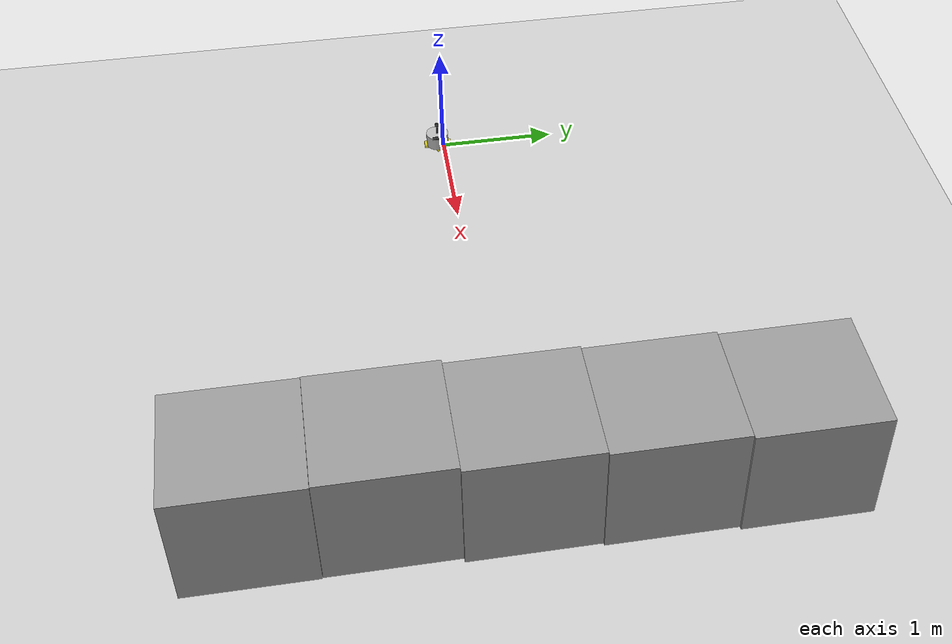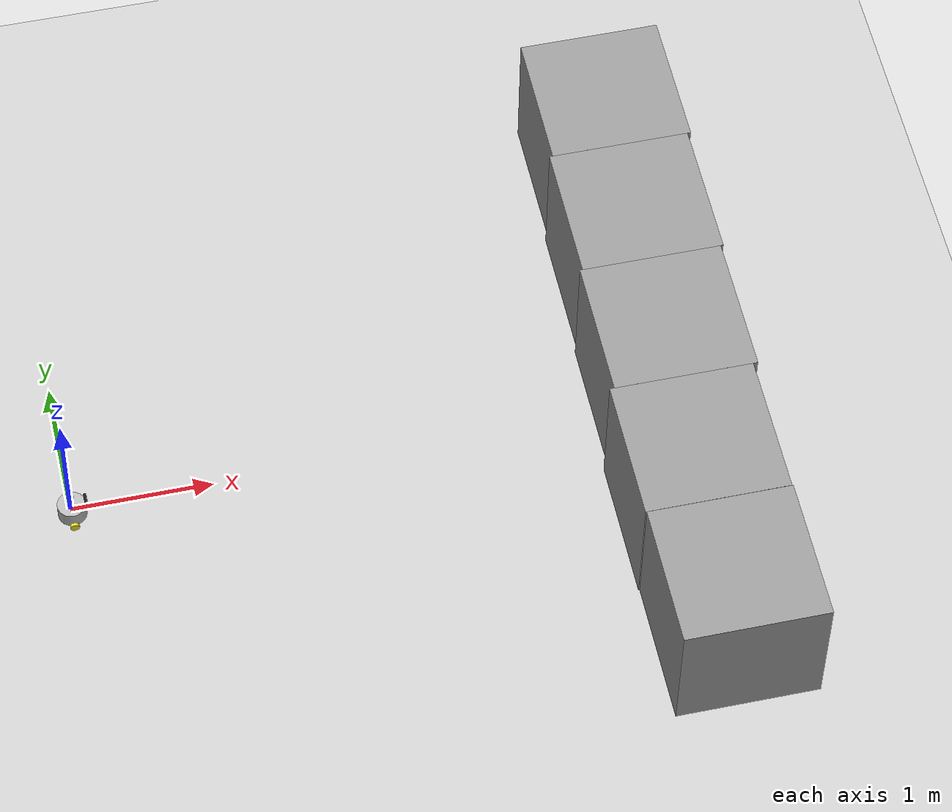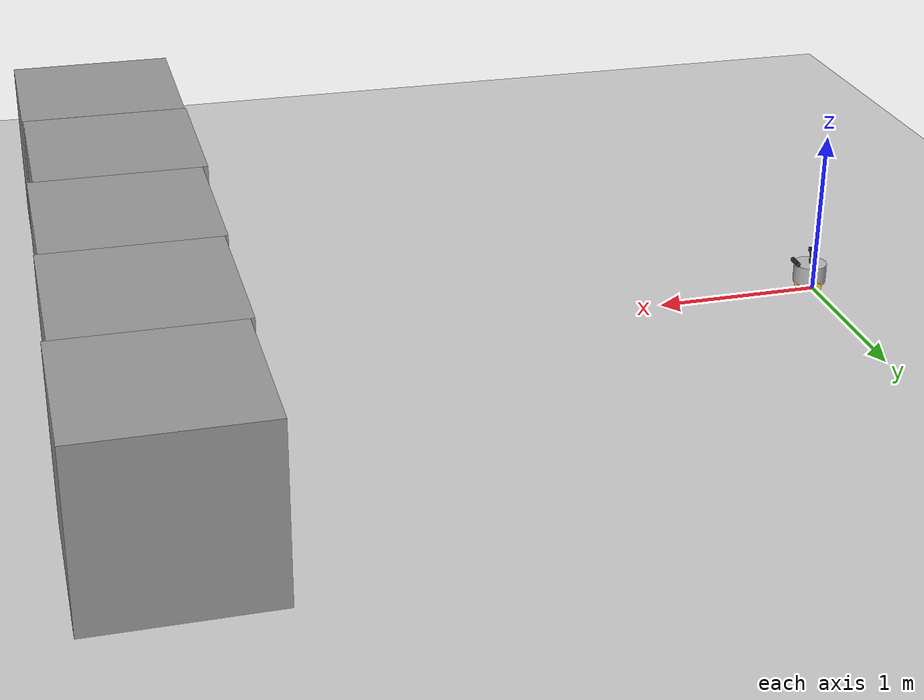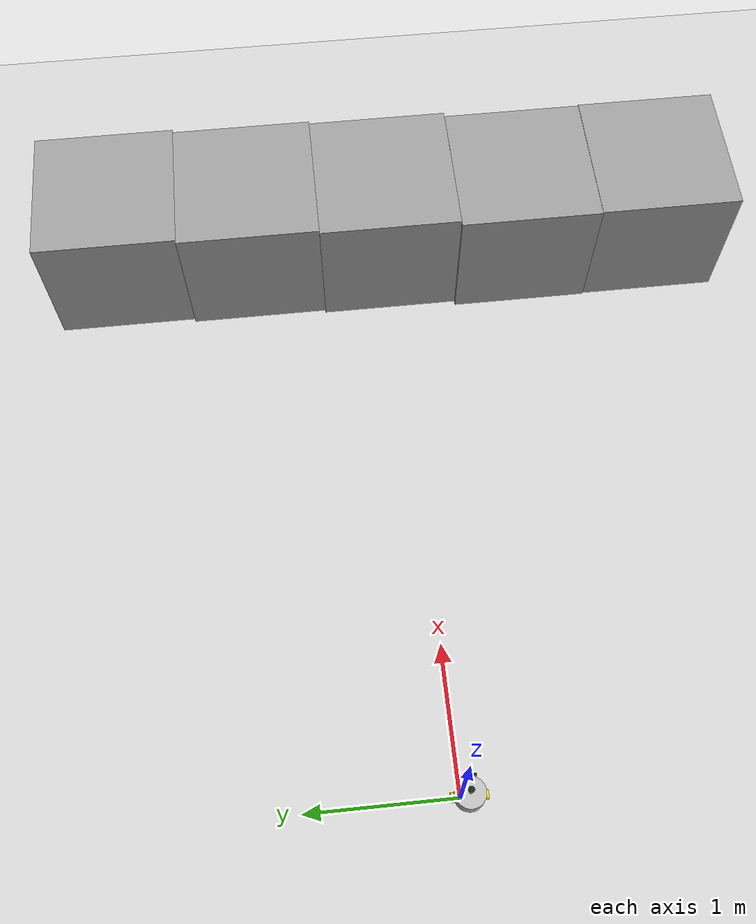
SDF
<sdf version="1.7">
 <world name="default">
  <light name="sun" type="directional">
   <pose>0 0 10 0 -0 0</pose>
   <diffuse>0.8 0.8 0.8 1</diffuse>
   <specular>0.2 0.2 0.2 1</specular>
   <attenuation>
    <range>1000</range>
    <constant>0.9</constant>
    <linear>0.01</linear>
    <quadratic>0.001</quadratic>
   </attenuation>
   <direction>-0.5 0.1 -0.9</direction>
   <spot><inner_angle>0</inner_angle><outer_angle>0</outer_angle><falloff>0</falloff></spot>
  </light>
  <model name="ground_plane">
   <static>1</static>
   <link name="link">
    <collision name="collision">
     <geometry><plane><normal>0 0 1</normal><size>100 100</size></plane></geometry>
     <surface>
      <contact><collide_bitmask>65535</collide_bitmask></contact>
      <friction><ode><mu>100</mu><mu2>50</mu2></ode></friction>
     </surface>
    </collision>
    <visual name="visual">
     <cast_shadows>0</cast_shadows>
     <geometry><plane><normal>0 0 1</normal><size>100 100</size></plane></geometry>
     <material>
      <script><uri>file://media/materials/scripts/gazebo.material</uri><name>Gazebo/Grey</name></script>
     </material>
    </visual>
   </link>
  </model>
  <gravity>0 0 -9.8</gravity>
  <magnetic_field>6e-06 2.3e-05 -4.2e-05</magnetic_field>
  <atmosphere type="adiabatic"/>
  <physics type="ode">
   <max_step_size>0.001</max_step_size>
   <real_time_factor>1</real_time_factor>
   <real_time_update_rate>1000</real_time_update_rate>
  </physics>
  <scene><ambient>0.4 0.4 0.4 1</ambient><background>0.7 0.7 0.7 1</background><shadows>1</shadows></scene>
  <audio><device>default</device></audio>
  <spherical_coordinates>
   <surface_model>EARTH_WGS84</surface_model>
   <latitude_deg>0</latitude_deg>
   <longitude_deg>0</longitude_deg>
   <elevation>0</elevation>
   <heading_deg>0</heading_deg>
  </spherical_coordinates>
  <model name="robot">
   <link name="base_footprint">
    <inertial>
     <pose>0.006849 0 0.097849 0 -0 0</pose>
     <mass>1.46</mass>
     <inertia>
      <ixx>0.00767852</ixx>
      <ixy>0</ixy>
      <ixz>-0.000681507</ixz>
      <iyy>0.00981003</iyy>
      <iyz>0</iyz>
      <izz>0.00733432</izz>
     </inertia>
    </inertial>
    <collision name="base_footprint_fixed_joint_lump__base_link_collision">
     <pose>0 0 0.091 0 -0 0</pose>
     <geometry><cylinder><length>0.12</length><radius>0.1</radius></cylinder></geometry>
    </collision>
    <collision name="base_footprint_fixed_joint_lump__back_caster_link_collision_1">
     <pose>0.08 0 0.015 0 -0 0</pose>
     <geometry><sphere><radius>0.016</radius></sphere></geometry>
     <surface>
      <contact><ode><kp>1e+10</kp><kd>1</kd></ode></contact>
      <friction><ode><mu>0</mu><mu2>0</mu2></ode></friction>
     </surface>
    </collision>
    <collision name="base_footprint_fixed_joint_lump__camera_link_collision_2">
     <pose>0.1 0 0.166 0 -0 0</pose>
     <geometry><box><size>0.02 0.1 0.02</size></box></geometry>
    </collision>
    <collision name="base_footprint_fixed_joint_lump__front_caster_link_collision_3">
     <pose>-0.08 0 0.015 0 -0 0</pose>
     <geometry><sphere><radius>0.016</radius></sphere></geometry>
     <surface>
      <contact><ode><kp>1e+10</kp><kd>1</kd></ode></contact>
      <friction><ode><mu>0</mu><mu2>0</mu2></ode></friction>
     </surface>
    </collision>
    <collision name="base_footprint_fixed_joint_lump__imu_link_collision_4">
     <pose>0 0 0.111 0 -0 0</pose>
     <geometry><box><size>0.02 0.02 0.02</size></box></geometry>
    </collision>
    <collision name="base_footprint_fixed_joint_lump__laser_support_link_collision_5">
     <pose>0 0 0.191 0 -0 0</pose>
     <geometry><cylinder><length>0.1</length><radius>0.01</radius></cylinder></geometry>
    </collision>
    <collision name="base_footprint_fixed_joint_lump__laser_link_collision_6">
     <pose>0 0 0.241 0 -0 0</pose>
     <geometry><cylinder><length>0.02</length><radius>0.02</radius></cylinder></geometry>
    </collision>
    <visual name="base_footprint_fixed_joint_lump__base_link_visual">
     <pose>0 0 0.091 0 -0 0</pose>
     <geometry><cylinder><length>0.12</length><radius>0.1</radius></cylinder></geometry>
    </visual>
    <visual name="base_footprint_fixed_joint_lump__back_caster_link_visual_1">
     <pose>0.08 0 0.015 0 -0 0</pose>
     <geometry><sphere><radius>0.016</radius></sphere></geometry>
     <material>
      <script><name>Gazebo/Yellow</name><uri>file://media/materials/scripts/gazebo.material</uri></script>
     </material>
    </visual>
    <visual name="base_footprint_fixed_joint_lump__camera_link_visual_2">
     <pose>0.1 0 0.166 0 -0 0</pose>
     <geometry><box><size>0.02 0.1 0.02</size></box></geometry>
     <material>
      <script><name>Gazebo/Black</name><uri>file://media/materials/scripts/gazebo.material</uri></script>
     </material>
    </visual>
    <visual name="base_footprint_fixed_joint_lump__front_caster_link_visual_3">
     <pose>-0.08 0 0.015 0 -0 0</pose>
     <geometry><sphere><radius>0.016</radius></sphere></geometry>
     <material>
      <script><name>Gazebo/Yellow</name><uri>file://media/materials/scripts/gazebo.material</uri></script>
     </material>
    </visual>
    <visual name="base_footprint_fixed_joint_lump__imu_link_visual_4">
     <pose>0 0 0.111 0 -0 0</pose>
     <geometry><box><size>0.02 0.02 0.02</size></box></geometry>
    </visual>
    <visual name="base_footprint_fixed_joint_lump__laser_support_link_visual_5">
     <pose>0 0 0.191 0 -0 0</pose>
     <geometry><cylinder><length>0.1</length><radius>0.01</radius></cylinder></geometry>
     <material>
      <script><name>Gazebo/Black</name><uri>file://media/materials/scripts/gazebo.material</uri></script>
     </material>
    </visual>
    <visual name="base_footprint_fixed_joint_lump__laser_link_visual_6">
     <pose>0 0 0.241 0 -0 0</pose>
     <geometry><cylinder><length>0.02</length><radius>0.02</radius></cylinder></geometry>
     <material>
      <script><name>Gazebo/Black</name><uri>file://media/materials/scripts/gazebo.material</uri></script>
     </material>
    </visual>
    <sensor name="camera_sensor" type="depth">
     <plugin name="depth_camera" filename="libgazebo_ros_camera.so">
      <frame_name>camera_optical_link</frame_name>
     </plugin>
     <always_on>1</always_on>
     <update_rate>30</update_rate>
     <camera name="camera">
      <horizontal_fov>1.50098</horizontal_fov>
      <image><width>800</width><height>600</height><format>R8G8B8</format></image>
      <distortion><k1>0</k1><k2>0</k2><k3>0</k3><p1>0</p1><p2>0</p2><center>0.5 0.5</center></distortion>
      <clip><near>0.1</near><far>100</far></clip>
     </camera>
     <pose>0.1 0 0.166 0 -0 0</pose>
    </sensor>
    <sensor name="imu_sensor" type="imu">
     <plugin name="imu_plugin" filename="libgazebo_ros_imu_sensor.so">
      <ros><namespace>/</namespace><remapping>~/out:=imu</remapping></ros>
      <initial_orientation_as_reference>0</initial_orientation_as_reference>
     </plugin>
     <update_rate>100</update_rate>
     <always_on>1</always_on>
     <imu>
      <angular_velocity>
       <x>
        <noise type="gaussian">
         <mean>0</mean>
         <stddev>0.0002</stddev>
         <bias_mean>7.5e-06</bias_mean>
         <bias_stddev>8e-07</bias_stddev>
        </noise>
       </x>
       <y>
        <noise type="gaussian">
         <mean>0</mean>
         <stddev>0.0002</stddev>
         <bias_mean>7.5e-06</bias_mean>
         <bias_stddev>8e-07</bias_stddev>
        </noise>
       </y>
       <z>
        <noise type="gaussian">
         <mean>0</mean>
         <stddev>0.0002</stddev>
         <bias_mean>7.5e-06</bias_mean>
         <bias_stddev>8e-07</bias_stddev>
        </noise>
       </z>
      </angular_velocity>
      <linear_acceleration>
       <x>
        <noise type="gaussian">
         <mean>0</mean>
         <stddev>0.017</stddev>
         <bias_mean>0.1</bias_mean>
         <bias_stddev>0.001</bias_stddev>
        </noise>
       </x>
       <y>
        <noise type="gaussian">
         <mean>0</mean>
         <stddev>0.017</stddev>
         <bias_mean>0.1</bias_mean>
         <bias_stddev>0.001</bias_stddev>
        </noise>
       </y>
       <z>
        <noise type="gaussian">
         <mean>0</mean>
         <stddev>0.017</stddev>
         <bias_mean>0.1</bias_mean>
         <bias_stddev>0.001</bias_stddev>
        </noise>
       </z>
      </linear_acceleration>
     </imu>
     <pose>0 0 0.111 0 -0 0</pose>
    </sensor>
    <sensor name="laserscan" type="ray">
     <plugin name="laserscan" filename="libgazebo_ros_ray_sensor.so">
      <ros><namespace>/</namespace><remapping>~/out:=scan</remapping></ros>
      <output_type>sensor_msgs/LaserScan</output_type>
      <frame_name>laser_link</frame_name>
     </plugin>
     <always_on>1</always_on>
     <visualize>0</visualize>
     <update_rate>5</update_rate>
     <ray>
      <scan>
       <horizontal>
        <samples>360</samples>
        <resolution>1</resolution>
        <min_angle>0</min_angle>
        <max_angle>6.28</max_angle>
       </horizontal>
       <vertical><samples>1</samples><min_angle>0</min_angle><max_angle>0</max_angle></vertical>
      </scan>
      <range><min>0.12</min><max>8</max><resolution>0.015</resolution></range>
      <noise><type>gaussian</type><mean>0</mean><stddev>0.01</stddev></noise>
     </ray>
     <pose>0 0 0.241 0 -0 0</pose>
    </sensor>
   </link>
   <joint name="left_wheel_joint" type="revolute">
    <pose relative_to="base_footprint">0 0.1 0.031 0 -0 0</pose>
    <parent>base_footprint</parent>
    <child>left_wheel_link</child>
    <axis>
     <xyz>0 1 0</xyz>
     <limit><lower>-1e+16</lower><upper>1e+16</upper></limit>
     <dynamics><spring_reference>0</spring_reference><spring_stiffness>0</spring_stiffness></dynamics>
    </axis>
   </joint>
   <link name="left_wheel_link">
    <pose relative_to="left_wheel_joint">0 0 0 0 -0 0</pose>
    <inertial>
     <mass>0.2</mass>
     <inertia>
      <ixx>7.78667e-05</ixx>
      <ixy>0</ixy>
      <ixz>0</ixz>
      <iyy>7.78667e-05</iyy>
      <iyz>0</iyz>
      <izz>0.0001024</izz>
     </inertia>
    </inertial>
    <collision name="left_wheel_link_collision">
     <pose>0 0 0 1.57079 -0 0</pose>
     <geometry><cylinder><length>0.04</length><radius>0.032</radius></cylinder></geometry>
     <surface>
      <contact><ode><kp>1e+10</kp><kd>1</kd></ode></contact>
      <friction><ode><mu>20</mu><mu2>20</mu2></ode></friction>
     </surface>
    </collision>
    <visual name="left_wheel_link_visual">
     <pose>0 0 0 1.57079 -0 0</pose>
     <geometry><cylinder><length>0.04</length><radius>0.032</radius></cylinder></geometry>
     <material>
      <script><name>Gazebo/Yellow</name><uri>file://media/materials/scripts/gazebo.material</uri></script>
     </material>
    </visual>
   </link>
   <joint name="right_wheel_joint" type="revolute">
    <pose relative_to="base_footprint">0 -0.1 0.031 0 -0 0</pose>
    <parent>base_footprint</parent>
    <child>right_wheel_link</child>
    <axis>
     <xyz>0 1 0</xyz>
     <limit><lower>-1e+16</lower><upper>1e+16</upper></limit>
     <dynamics><spring_reference>0</spring_reference><spring_stiffness>0</spring_stiffness></dynamics>
    </axis>
   </joint>
   <link name="right_wheel_link">
    <pose relative_to="right_wheel_joint">0 0 0 0 -0 0</pose>
    <inertial>
     <mass>0.2</mass>
     <inertia>
      <ixx>7.78667e-05</ixx>
      <ixy>0</ixy>
      <ixz>0</ixz>
      <iyy>7.78667e-05</iyy>
      <iyz>0</iyz>
      <izz>0.0001024</izz>
     </inertia>
    </inertial>
    <collision name="right_wheel_link_collision">
     <pose>0 0 0 1.57079 -0 0</pose>
     <geometry><cylinder><length>0.04</length><radius>0.032</radius></cylinder></geometry>
     <surface>
      <contact><ode><kp>1e+10</kp><kd>1</kd></ode></contact>
      <friction><ode><mu>20</mu><mu2>20</mu2></ode></friction>
     </surface>
    </collision>
    <visual name="right_wheel_link_visual">
     <pose>0 0 0 1.57079 -0 0</pose>
     <geometry><cylinder><length>0.04</length><radius>0.032</radius></cylinder></geometry>
     <material>
      <script><name>Gazebo/Yellow</name><uri>file://media/materials/scripts/gazebo.material</uri></script>
     </material>
    </visual>
   </link>
   <static>0</static>
   <plugin name="gazebo_ros2_control" filename="libgazebo_ros2_control.so">
    <parameters>/home/agv/Desktop/catkin/catkin_ws/install/bot_description/share/bot_description/config/bot_ros2_controller.yaml</parameters>
    <ros>
     <remapping>/bot_diff_drive_controller/cmd_vel_unstamped:=/cmd_vel</remapping>
     <remapping>/bot_diff_drive_controller/odom:=/odom</remapping>
    </ros>
   </plugin>
   <pose>0.004721 -0.055566 0.001 0 0 -0.006076</pose>
  </model>
  <light name="user_spot_light_0" type="spot">
   <pose>2.83027 -0.025407 1 0 -0 0</pose>
   <diffuse>0.5 0.5 0.5 1</diffuse>
   <specular>0.1 0.1 0.1 1</specular>
   <direction>0 0 -1</direction>
   <attenuation>
    <range>20</range>
    <constant>0.5</constant>
    <linear>0.01</linear>
    <quadratic>0.001</quadratic>
   </attenuation>
   <cast_shadows>0</cast_shadows>
   <spot><inner_angle>0.6</inner_angle><outer_angle>1</outer_angle><falloff>1</falloff></spot>
  </light>
  <model name="unit_box">
   <pose>4.24022 2.06038 0.5 0 -0 0.002571</pose>
   <link name="link">
    <inertial>
     <mass>1</mass>
     <inertia>
      <ixx>0.166667</ixx>
      <ixy>0</ixy>
      <ixz>0</ixz>
      <iyy>0.166667</iyy>
      <iyz>0</iyz>
      <izz>0.166667</izz>
     </inertia>
    </inertial>
    <collision name="collision"><geometry><box><size>1 1 1</size></box></geometry></collision>
    <visual name="visual">
     <geometry><box><size>1 1 1</size></box></geometry>
     <material>
      <script><name>Gazebo/Grey</name><uri>file://media/materials/scripts/gazebo.material</uri></script>
     </material>
    </visual>
   </link>
  </model>
  <model name="unit_box_0">
   <pose>4.21917 1.06029 0.499995 0 1e-05 0.002618</pose>
   <link name="link">
    <inertial>
     <mass>1</mass>
     <inertia>
      <ixx>0.166667</ixx>
      <ixy>0</ixy>
      <ixz>0</ixz>
      <iyy>0.166667</iyy>
      <iyz>0</iyz>
      <izz>0.166667</izz>
     </inertia>
    </inertial>
    <collision name="collision"><geometry><box><size>1 1 1</size></box></geometry></collision>
    <visual name="visual">
     <geometry><box><size>1 1 1</size></box></geometry>
     <material>
      <script><name>Gazebo/Grey</name><uri>file://media/materials/scripts/gazebo.material</uri></script>
     </material>
    </visual>
   </link>
  </model>
  <model name="unit_box_1">
   <pose>4.20249 0.060242 0.499995 0 -1e-05 0.002622</pose>
   <link name="link">
    <inertial>
     <mass>1</mass>
     <inertia>
      <ixx>0.166667</ixx>
      <ixy>0</ixy>
      <ixz>0</ixz>
      <iyy>0.166667</iyy>
      <iyz>0</iyz>
      <izz>0.166667</izz>
     </inertia>
    </inertial>
    <collision name="collision"><geometry><box><size>1 1 1</size></box></geometry></collision>
    <visual name="visual">
     <geometry><box><size>1 1 1</size></box></geometry>
     <material>
      <script><name>Gazebo/Grey</name><uri>file://media/materials/scripts/gazebo.material</uri></script>
     </material>
    </visual>
   </link>
  </model>
  <model name="unit_box_2">
   <pose>4.17199 -0.939881 0.499995 1e-05 -0 0.002658</pose>
   <link name="link">
    <inertial>
     <mass>1</mass>
     <inertia>
      <ixx>0.166667</ixx>
      <ixy>0</ixy>
      <ixz>0</ixz>
      <iyy>0.166667</iyy>
      <iyz>0</iyz>
      <izz>0.166667</izz>
     </inertia>
    </inertial>
    <collision name="collision"><geometry><box><size>1 1 1</size></box></geometry></collision>
    <visual name="visual">
     <geometry><box><size>1 1 1</size></box></geometry>
     <material>
      <script><name>Gazebo/Grey</name><uri>file://media/materials/scripts/gazebo.material</uri></script>
     </material>
    </visual>
   </link>
  </model>
  <model name="unit_box_3">
   <pose>4.18189 -1.94098 0.499995 -1e-05 -0 0.001749</pose>
   <link name="link">
    <inertial>
     <mass>1</mass>
     <inertia>
      <ixx>0.166667</ixx>
      <ixy>0</ixy>
      <ixz>0</ixz>
      <iyy>0.166667</iyy>
      <iyz>0</iyz>
      <izz>0.166667</izz>
     </inertia>
    </inertial>
    <collision name="collision"><geometry><box><size>1 1 1</size></box></geometry></collision>
    <visual name="visual">
     <geometry><box><size>1 1 1</size></box></geometry>
     <material>
      <script><name>Gazebo/Grey</name><uri>file://media/materials/scripts/gazebo.material</uri></script>
     </material>
    </visual>
   </link>
  </model>
 </world>
</sdf>
